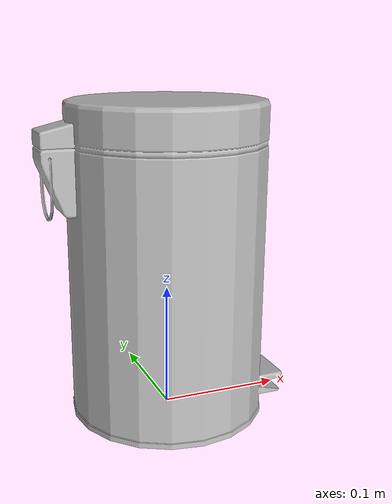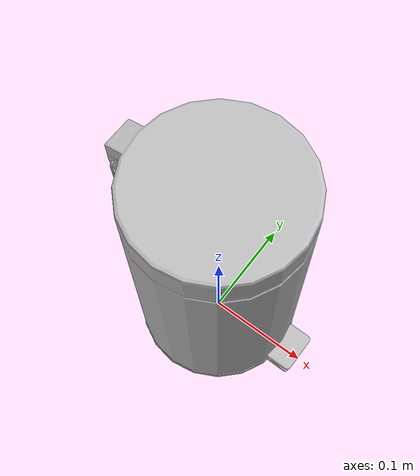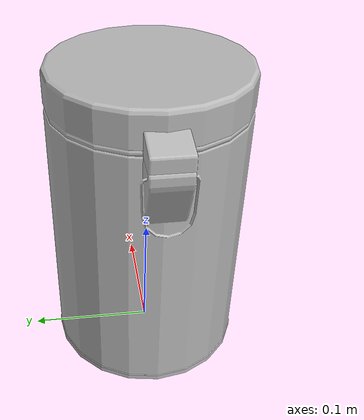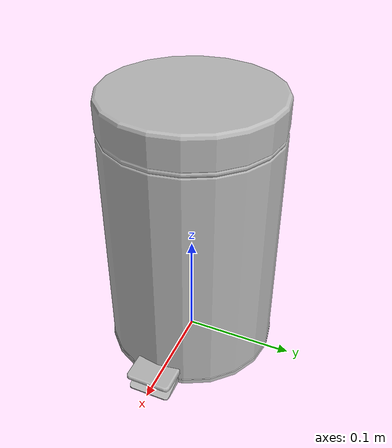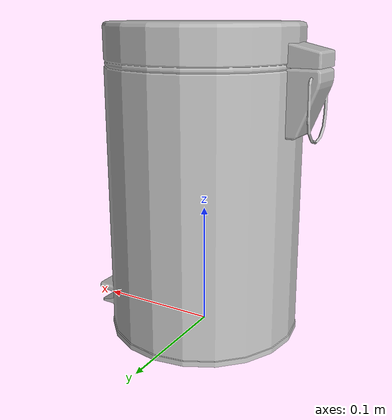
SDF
<?xml version='1.0'?>
<sdf version='1.4'>
  <model name='395'>
    <pose>0 0 0 0 0 0</pose>
    <static>true</static>
    <link name='link'>
      <collision name='collision'>
        <pose>0 0 0 0 0 0</pose>
        <geometry>
          <box>
            <size>0.199765 0.157 2</size>
          </box>
        </geometry>
      </collision>
      <visual name='visual'>
        <pose>0 0 0 0 0 0</pose>
        <geometry>
          <mesh><uri>model://395/395.dae</uri></mesh>
        </geometry>
      </visual>
    </link>
  </model>
</sdf>
